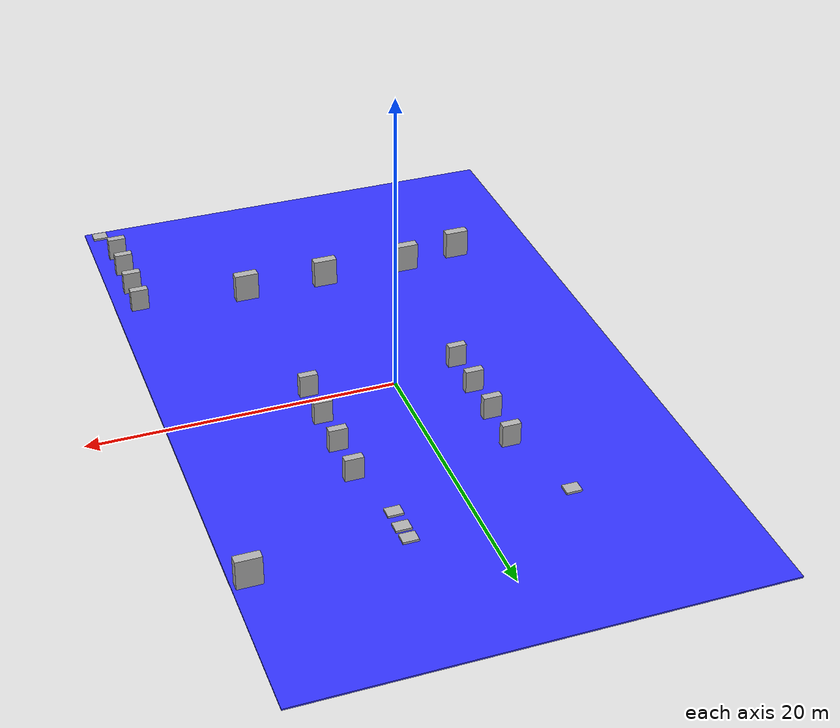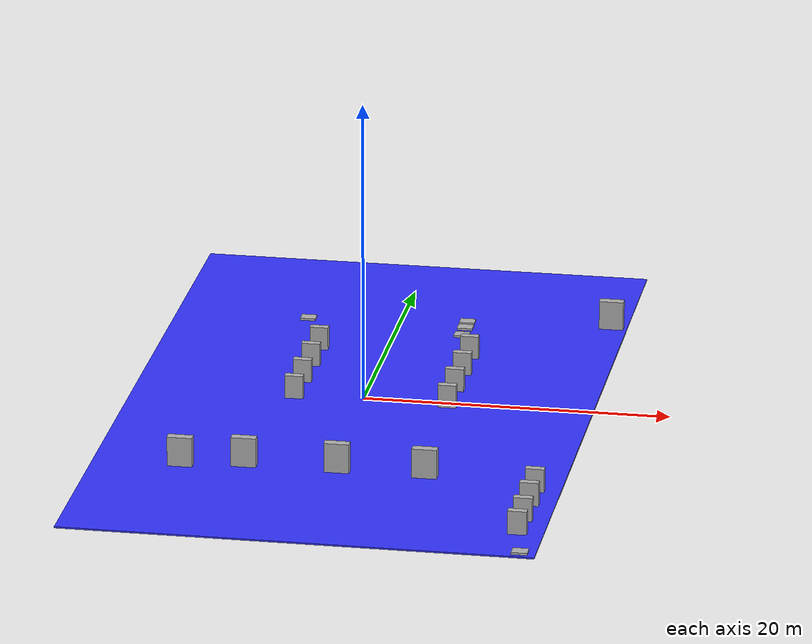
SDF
<sdf version="1.9">
 <world name="sitl">
  <physics name="1ms" type="ignored">
   <max_step_size>0.001</max_step_size>
   <real_time_factor>1</real_time_factor>
   <real_time_update_rate>1000</real_time_update_rate>
  </physics>
  <plugin name="gz::sim::systems::Physics" filename="ignition-gazebo-physics-system"/>
  <plugin name="gz::sim::systems::UserCommands" filename="ignition-gazebo-user-commands-system"/>
  <plugin name="gz::sim::systems::SceneBroadcaster" filename="ignition-gazebo-scene-broadcaster-system"/>
  <plugin name="gz::sim::systems::Contact" filename="ignition-gazebo-contact-system"/>
  <plugin name="ignition::gazebo::systems::Imu" filename="libignition-gazebo-imu-system.so"/>
  <plugin filename="ignition-gazebo-sensors-system" name="gz::sim::systems::Sensors">
   <render_engine>ogre2</render_engine>
  </plugin>
  <gravity>0 0 -9.8</gravity>
  <magnetic_field>6e-06 2.3e-05 -4.2e-05</magnetic_field>
  <atmosphere type="adiabatic"/>
  <scene>
   <ambient>1 1 1 1</ambient>
   <background>0.3 0.7 0.9 1</background>
   <shadows>0</shadows>
   <grid>false</grid>
  </scene>
  <light type="directional" name="sun">
   <cast_shadows>0</cast_shadows>
   <pose>-5 -3 10 0 0 0</pose>
   <diffuse>1 1 1 1</diffuse>
   <specular>1 1 1 1</specular>
   <direction>0 0 -1</direction>
  </light>
  <include>
   <uri>https://fuel.ignitionrobotics.org/1.0/MovAi/models/Warehouse</uri>
   <name>warehouse</name>
   <pose>0 0 -0.09 0 0 0</pose>
  </include>
  <include>
   <uri>https://fuel.ignitionrobotics.org/1.0/MovAi/models/shelf_big</uri>
   <name>shelf_big_0</name>
   <pose>-9.34177 -13.5598 0 0 -0 0</pose>
  </include>
  <include>
   <uri>https://fuel.ignitionrobotics.org/1.0/MovAi/models/shelf</uri>
   <name>shelf</name>
   <pose>-4.41528 -0.690987 0 0 -0 0</pose>
  </include>
  <include>
   <uri>https://fuel.ignitionrobotics.org/1.0/MovAi/models/shelf</uri>
   <name>shelf_0</name>
   <pose>-4.41528 2.30697 0 0 -0 0</pose>
  </include>
  <include>
   <uri>https://fuel.ignitionrobotics.org/1.0/MovAi/models/shelf</uri>
   <name>shelf_1</name>
   <pose>-4.41528 5.30708 0 0 -0 0</pose>
  </include>
  <include>
   <uri>https://fuel.ignitionrobotics.org/1.0/MovAi/models/shelf</uri>
   <name>shelf_2</name>
   <pose>-4.41528 8.34352 0 0 -0 0</pose>
  </include>
  <include>
   <uri>https://fuel.ignitionrobotics.org/1.0/MovAi/models/shelf</uri>
   <name>shelf_3</name>
   <pose>5.60144 8.34352 0 0 -0 0</pose>
  </include>
  <include>
   <uri>https://fuel.ignitionrobotics.org/1.0/MovAi/models/shelf</uri>
   <name>shelf_4</name>
   <pose>5.60144 5.30708 0 0 -0 0</pose>
  </include>
  <include>
   <uri>https://fuel.ignitionrobotics.org/1.0/MovAi/models/shelf</uri>
   <name>shelf_5</name>
   <pose>5.60144 -0.690987 0 0 -0 0</pose>
  </include>
  <include>
   <uri>https://fuel.ignitionrobotics.org/1.0/MovAi/models/shelf</uri>
   <name>shelf_6</name>
   <pose>5.60144 2.30697 0 0 -0 0</pose>
  </include>
  <include>
   <uri>https://fuel.ignitionrobotics.org/1.0/MovAi/models/pallet_box_mobile</uri>
   <name>pallet_box_mobile</name>
   <pose>4.4161 14.6952 0.01 0 -0 0</pose>
  </include>
  <include>
   <uri>https://fuel.ignitionrobotics.org/1.0/MovAi/models/pallet_box_mobile</uri>
   <name>pallet_box_mobile_0</name>
   <pose>4.45415 13.6212 0.01 0 -0 0</pose>
  </include>
  <include>
   <uri>https://fuel.ignitionrobotics.org/1.0/MovAi/models/pallet_box_mobile</uri>
   <name>pallet_box_mobile_1</name>
   <pose>4.4468 12.229 0.01 0 -0 0</pose>
  </include>
  <include>
   <uri>https://fuel.ignitionrobotics.org/1.0/MovAi/models/pallet_box_mobile</uri>
   <name>pallet_box</name>
   <pose>-6.11913 13.7079 0.01 0 -0 0</pose>
   <static>true</static>
  </include>
  <include>
   <uri>https://fuel.ignitionrobotics.org/1.0/MovAi/models/shelf_big</uri>
   <name>shelf_big_1</name>
   <pose>13.9821 15.319 0 0 -0 0</pose>
  </include>
  <include>
   <uri>https://fuel.ignitionrobotics.org/1.0/MovAi/models/shelf_big</uri>
   <name>shelf_big_2</name>
   <pose>6.19777 -12.9647 0 0 -0 0</pose>
  </include>
  <include>
   <uri>https://fuel.ignitionrobotics.org/1.0/MovAi/models/shelf_big</uri>
   <name>shelf_big_3</name>
   <pose>0.594376 -12.9647 0 0 -0 0</pose>
  </include>
  <include>
   <uri>https://fuel.ignitionrobotics.org/1.0/MovAi/models/shelf_big</uri>
   <name>shelf_big_4</name>
   <pose>-5.36284 -12.9647 0 0 -0 0</pose>
  </include>
  <include>
   <uri>https://fuel.ignitionrobotics.org/1.0/MovAi/models/shelf</uri>
   <name>shelf_7</name>
   <pose>13.3818 -21.2416 0 0 -0 0</pose>
  </include>
  <include>
   <uri>https://fuel.ignitionrobotics.org/1.0/MovAi/models/shelf</uri>
   <name>shelf_8</name>
   <pose>13.3818 -19.0028 0 0 -0 0</pose>
  </include>
  <include>
   <uri>https://fuel.ignitionrobotics.org/1.0/MovAi/models/shelf</uri>
   <name>shelf_9</name>
   <pose>13.3818 -16.4478 0 0 -0 0</pose>
  </include>
  <include>
   <uri>https://fuel.ignitionrobotics.org/1.0/MovAi/models/shelf</uri>
   <name>shelf_10</name>
   <pose>13.3818 -14.1028 0 0 -0 0</pose>
  </include>
  <include>
   <uri>https://fuel.ignitionrobotics.org/1.0/MovAi/models/pallet_box_mobile</uri>
   <name>pallet_box_0</name>
   <pose>14.0222 -24.335 0.01 0 -0 0</pose>
   <static>true</static>
  </include>
  <model name="spawn_platform">
   <static>true</static>
   <pose>0 0 0.01 0 0 0</pose>
   <link name="link">
    <collision name="collision"><geometry><box><size>30 50 0.1</size></box></geometry></collision>
    <visual name="visual">
     <geometry><box><size>30 50 0.1</size></box></geometry>
     <material>
      <ambient>0.2 0.2 1.0 1</ambient>
      <diffuse>0.2 0.2 1.0 1</diffuse>
      <specular>0.2 0.2 1.0 1</specular>
     </material>
    </visual>
   </link>
  </model>
 </world>
</sdf>

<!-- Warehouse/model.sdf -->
<sdf version="1.7">
  <model name="Warehouse">
    <static>true</static>
    <link name="link">
      <pose>0 0 0.05 0 0 0</pose>
      <visual name="visual">
        <geometry>
          <box>
            <size>30.0 30.0 0.1</size>
          </box>
        </geometry>
        <material>
          <ambient>0.7 0.7 0.7 1</ambient>
          <diffuse>0.7 0.7 0.7 1</diffuse>
        </material>
      </visual>    </link>
  </model>
</sdf>

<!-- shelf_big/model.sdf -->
<sdf version="1.7">
  <model name="shelf_big">
    <static>true</static>
    <link name="link">
      <pose>0 0 1.0 0 0 0</pose>
      <visual name="visual">
        <geometry>
          <box>
            <size>1.6 0.6 2.0</size>
          </box>
        </geometry>
        <material>
          <ambient>0.7 0.7 0.7 1</ambient>
          <diffuse>0.7 0.7 0.7 1</diffuse>
        </material>
      </visual>
      <collision name="collision">
        <geometry>
          <box>
            <size>1.6 0.6 2.0</size>
          </box>
        </geometry>
      </collision>
    </link>
  </model>
</sdf>

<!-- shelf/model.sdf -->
<sdf version="1.7">
  <model name="shelf">
    <static>true</static>
    <link name="link">
      <pose>0 0 0.8 0 0 0</pose>
      <visual name="visual">
        <geometry>
          <box>
            <size>1.2 0.5 1.6</size>
          </box>
        </geometry>
        <material>
          <ambient>0.7 0.7 0.7 1</ambient>
          <diffuse>0.7 0.7 0.7 1</diffuse>
        </material>
      </visual>
      <collision name="collision">
        <geometry>
          <box>
            <size>1.2 0.5 1.6</size>
          </box>
        </geometry>
      </collision>
    </link>
  </model>
</sdf>

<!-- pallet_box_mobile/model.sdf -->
<sdf version="1.7">
  <model name="pallet_box_mobile">
    <static>true</static>
    <link name="link">
      <pose>0 0 0.1 0 0 0</pose>
      <visual name="visual">
        <geometry>
          <box>
            <size>1.0 0.8 0.2</size>
          </box>
        </geometry>
        <material>
          <ambient>0.7 0.7 0.7 1</ambient>
          <diffuse>0.7 0.7 0.7 1</diffuse>
        </material>
      </visual>
      <collision name="collision">
        <geometry>
          <box>
            <size>1.0 0.8 0.2</size>
          </box>
        </geometry>
      </collision>
    </link>
  </model>
</sdf>
